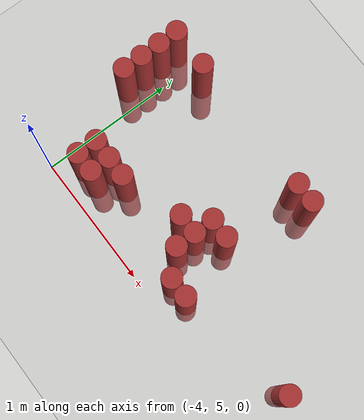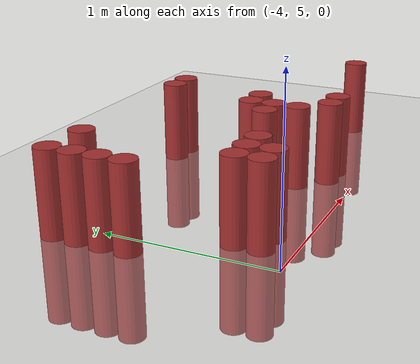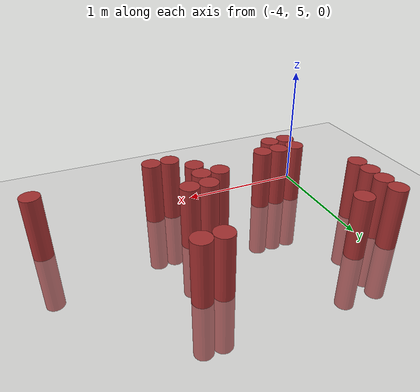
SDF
<sdf version="1.6">
 <world name="default">
  <model name="ground_plane">
   <static>1</static>
   <link name="link">
    <collision name="collision">
     <geometry><plane><normal>0 0 1</normal><size>100 100</size></plane></geometry>
     <surface><friction><ode><mu>100</mu><mu2>50</mu2></ode></friction></surface>
    </collision>
    <visual name="visual">
     <cast_shadows>0</cast_shadows>
     <geometry><plane><normal>0 0 1</normal><size>100 100</size></plane></geometry>
     <material>
      <script><uri>file://media/materials/scripts/gazebo.material</uri><name>Gazebo/Grey</name></script>
     </material>
    </visual>
   </link>
  </model>
  <model name="unit_cylinder_145">
   <static>1</static>
   <pose>-4.125000 5.775000 0.000000 0.000000 0.000000 0.000000</pose>
   <link name="link">
    <inertial>
     <mass>1</mass>
     <inertia><ixx>0.145833</ixx><ixy>0</ixy><ixz>0</ixz><iyy>0.145833</iyy><iyz>0</iyz><izz>0.125</izz></inertia>
    </inertial>
    <collision name="collision">
     <geometry><cylinder><radius>0.075000</radius><length>1</length></cylinder></geometry>
    </collision>
    <visual name="visual">
     <geometry><cylinder><radius>0.075000</radius><length>1</length></cylinder></geometry>
     <material>
      <ambient>0.648000 0.192000 0.192000 1</ambient>
      <diffuse>0.648000 0.192000 0.192000 1</diffuse>
     </material>
     <material>
      <script><name>Gazebo/Grey</name><uri>file://media/materials/scripts/gazebo.material</uri></script>
     </material>
    </visual>
    <sensor name="sensor_contact" type="contact"><contact><collision>collision</collision></contact></sensor>
   </link>
   <plugin filename="gz-sim-touchplugin-system" name="gz::sim::systems::TouchPlugin">
    <target>robot</target>
    <namespace>robot</namespace>
    <time>0.001</time>
    <enabled>true</enabled>
   </plugin>
  </model>
  <model name="unit_cylinder_146">
   <static>1</static>
   <pose>-4.125000 5.925000 0.000000 0.000000 0.000000 0.000000</pose>
   <link name="link">
    <inertial>
     <mass>1</mass>
     <inertia><ixx>0.145833</ixx><ixy>0</ixy><ixz>0</ixz><iyy>0.145833</iyy><iyz>0</iyz><izz>0.125</izz></inertia>
    </inertial>
    <collision name="collision">
     <geometry><cylinder><radius>0.075000</radius><length>1</length></cylinder></geometry>
    </collision>
    <visual name="visual">
     <geometry><cylinder><radius>0.075000</radius><length>1</length></cylinder></geometry>
     <material>
      <ambient>0.648000 0.192000 0.192000 1</ambient>
      <diffuse>0.648000 0.192000 0.192000 1</diffuse>
     </material>
     <material>
      <script><name>Gazebo/Grey</name><uri>file://media/materials/scripts/gazebo.material</uri></script>
     </material>
    </visual>
    <sensor name="sensor_contact" type="contact"><contact><collision>collision</collision></contact></sensor>
   </link>
   <plugin filename="gz-sim-touchplugin-system" name="gz::sim::systems::TouchPlugin">
    <target>robot</target>
    <namespace>robot</namespace>
    <time>0.001</time>
    <enabled>true</enabled>
   </plugin>
  </model>
  <model name="unit_cylinder_147">
   <static>1</static>
   <pose>-4.125000 6.075000 0.000000 0.000000 0.000000 0.000000</pose>
   <link name="link">
    <inertial>
     <mass>1</mass>
     <inertia><ixx>0.145833</ixx><ixy>0</ixy><ixz>0</ixz><iyy>0.145833</iyy><iyz>0</iyz><izz>0.125</izz></inertia>
    </inertial>
    <collision name="collision">
     <geometry><cylinder><radius>0.075000</radius><length>1</length></cylinder></geometry>
    </collision>
    <visual name="visual">
     <geometry><cylinder><radius>0.075000</radius><length>1</length></cylinder></geometry>
     <material>
      <ambient>0.648000 0.192000 0.192000 1</ambient>
      <diffuse>0.648000 0.192000 0.192000 1</diffuse>
     </material>
     <material>
      <script><name>Gazebo/Grey</name><uri>file://media/materials/scripts/gazebo.material</uri></script>
     </material>
    </visual>
    <sensor name="sensor_contact" type="contact"><contact><collision>collision</collision></contact></sensor>
   </link>
   <plugin filename="gz-sim-touchplugin-system" name="gz::sim::systems::TouchPlugin">
    <target>robot</target>
    <namespace>robot</namespace>
    <time>0.001</time>
    <enabled>true</enabled>
   </plugin>
  </model>
  <model name="unit_cylinder_148">
   <static>1</static>
   <pose>-4.125000 6.225000 0.000000 0.000000 0.000000 0.000000</pose>
   <link name="link">
    <inertial>
     <mass>1</mass>
     <inertia><ixx>0.145833</ixx><ixy>0</ixy><ixz>0</ixz><iyy>0.145833</iyy><iyz>0</iyz><izz>0.125</izz></inertia>
    </inertial>
    <collision name="collision">
     <geometry><cylinder><radius>0.075000</radius><length>1</length></cylinder></geometry>
    </collision>
    <visual name="visual">
     <geometry><cylinder><radius>0.075000</radius><length>1</length></cylinder></geometry>
     <material>
      <ambient>0.648000 0.192000 0.192000 1</ambient>
      <diffuse>0.648000 0.192000 0.192000 1</diffuse>
     </material>
     <material>
      <script><name>Gazebo/Grey</name><uri>file://media/materials/scripts/gazebo.material</uri></script>
     </material>
    </visual>
    <sensor name="sensor_contact" type="contact"><contact><collision>collision</collision></contact></sensor>
   </link>
   <plugin filename="gz-sim-touchplugin-system" name="gz::sim::systems::TouchPlugin">
    <target>robot</target>
    <namespace>robot</namespace>
    <time>0.001</time>
    <enabled>true</enabled>
   </plugin>
  </model>
  <model name="unit_cylinder_164">
   <static>1</static>
   <pose>-3.825000 5.175000 0.000000 0.000000 0.000000 0.000000</pose>
   <link name="link">
    <inertial>
     <mass>1</mass>
     <inertia><ixx>0.145833</ixx><ixy>0</ixy><ixz>0</ixz><iyy>0.145833</iyy><iyz>0</iyz><izz>0.125</izz></inertia>
    </inertial>
    <collision name="collision">
     <geometry><cylinder><radius>0.075000</radius><length>1</length></cylinder></geometry>
    </collision>
    <visual name="visual">
     <geometry><cylinder><radius>0.075000</radius><length>1</length></cylinder></geometry>
     <material>
      <ambient>0.648000 0.192000 0.192000 1</ambient>
      <diffuse>0.648000 0.192000 0.192000 1</diffuse>
     </material>
     <material>
      <script><name>Gazebo/Grey</name><uri>file://media/materials/scripts/gazebo.material</uri></script>
     </material>
    </visual>
    <sensor name="sensor_contact" type="contact"><contact><collision>collision</collision></contact></sensor>
   </link>
   <plugin filename="gz-sim-touchplugin-system" name="gz::sim::systems::TouchPlugin">
    <target>robot</target>
    <namespace>robot</namespace>
    <time>0.001</time>
    <enabled>true</enabled>
   </plugin>
  </model>
  <model name="unit_cylinder_165">
   <static>1</static>
   <pose>-3.825000 5.325000 0.000000 0.000000 0.000000 0.000000</pose>
   <link name="link">
    <inertial>
     <mass>1</mass>
     <inertia><ixx>0.145833</ixx><ixy>0</ixy><ixz>0</ixz><iyy>0.145833</iyy><iyz>0</iyz><izz>0.125</izz></inertia>
    </inertial>
    <collision name="collision">
     <geometry><cylinder><radius>0.075000</radius><length>1</length></cylinder></geometry>
    </collision>
    <visual name="visual">
     <geometry><cylinder><radius>0.075000</radius><length>1</length></cylinder></geometry>
     <material>
      <ambient>0.648000 0.192000 0.192000 1</ambient>
      <diffuse>0.648000 0.192000 0.192000 1</diffuse>
     </material>
     <material>
      <script><name>Gazebo/Grey</name><uri>file://media/materials/scripts/gazebo.material</uri></script>
     </material>
    </visual>
    <sensor name="sensor_contact" type="contact"><contact><collision>collision</collision></contact></sensor>
   </link>
   <plugin filename="gz-sim-touchplugin-system" name="gz::sim::systems::TouchPlugin">
    <target>robot</target>
    <namespace>robot</namespace>
    <time>0.001</time>
    <enabled>true</enabled>
   </plugin>
  </model>
  <model name="unit_cylinder_166">
   <static>1</static>
   <pose>-3.825000 6.225000 0.000000 0.000000 0.000000 0.000000</pose>
   <link name="link">
    <inertial>
     <mass>1</mass>
     <inertia><ixx>0.145833</ixx><ixy>0</ixy><ixz>0</ixz><iyy>0.145833</iyy><iyz>0</iyz><izz>0.125</izz></inertia>
    </inertial>
    <collision name="collision">
     <geometry><cylinder><radius>0.075000</radius><length>1</length></cylinder></geometry>
    </collision>
    <visual name="visual">
     <geometry><cylinder><radius>0.075000</radius><length>1</length></cylinder></geometry>
     <material>
      <ambient>0.648000 0.192000 0.192000 1</ambient>
      <diffuse>0.648000 0.192000 0.192000 1</diffuse>
     </material>
     <material>
      <script><name>Gazebo/Grey</name><uri>file://media/materials/scripts/gazebo.material</uri></script>
     </material>
    </visual>
    <sensor name="sensor_contact" type="contact"><contact><collision>collision</collision></contact></sensor>
   </link>
   <plugin filename="gz-sim-touchplugin-system" name="gz::sim::systems::TouchPlugin">
    <target>robot</target>
    <namespace>robot</namespace>
    <time>0.001</time>
    <enabled>true</enabled>
   </plugin>
  </model>
  <model name="unit_cylinder_171">
   <static>1</static>
   <pose>-3.675000 5.175000 0.000000 0.000000 0.000000 0.000000</pose>
   <link name="link">
    <inertial>
     <mass>1</mass>
     <inertia><ixx>0.145833</ixx><ixy>0</ixy><ixz>0</ixz><iyy>0.145833</iyy><iyz>0</iyz><izz>0.125</izz></inertia>
    </inertial>
    <collision name="collision">
     <geometry><cylinder><radius>0.075000</radius><length>1</length></cylinder></geometry>
    </collision>
    <visual name="visual">
     <geometry><cylinder><radius>0.075000</radius><length>1</length></cylinder></geometry>
     <material>
      <ambient>0.648000 0.192000 0.192000 1</ambient>
      <diffuse>0.648000 0.192000 0.192000 1</diffuse>
     </material>
     <material>
      <script><name>Gazebo/Grey</name><uri>file://media/materials/scripts/gazebo.material</uri></script>
     </material>
    </visual>
    <sensor name="sensor_contact" type="contact"><contact><collision>collision</collision></contact></sensor>
   </link>
   <plugin filename="gz-sim-touchplugin-system" name="gz::sim::systems::TouchPlugin">
    <target>robot</target>
    <namespace>robot</namespace>
    <time>0.001</time>
    <enabled>true</enabled>
   </plugin>
  </model>
  <model name="unit_cylinder_172">
   <static>1</static>
   <pose>-3.675000 5.325000 0.000000 0.000000 0.000000 0.000000</pose>
   <link name="link">
    <inertial>
     <mass>1</mass>
     <inertia><ixx>0.145833</ixx><ixy>0</ixy><ixz>0</ixz><iyy>0.145833</iyy><iyz>0</iyz><izz>0.125</izz></inertia>
    </inertial>
    <collision name="collision">
     <geometry><cylinder><radius>0.075000</radius><length>1</length></cylinder></geometry>
    </collision>
    <visual name="visual">
     <geometry><cylinder><radius>0.075000</radius><length>1</length></cylinder></geometry>
     <material>
      <ambient>0.648000 0.192000 0.192000 1</ambient>
      <diffuse>0.648000 0.192000 0.192000 1</diffuse>
     </material>
     <material>
      <script><name>Gazebo/Grey</name><uri>file://media/materials/scripts/gazebo.material</uri></script>
     </material>
    </visual>
    <sensor name="sensor_contact" type="contact"><contact><collision>collision</collision></contact></sensor>
   </link>
   <plugin filename="gz-sim-touchplugin-system" name="gz::sim::systems::TouchPlugin">
    <target>robot</target>
    <namespace>robot</namespace>
    <time>0.001</time>
    <enabled>true</enabled>
   </plugin>
  </model>
  <model name="unit_cylinder_177">
   <static>1</static>
   <pose>-3.525000 5.325000 0.000000 0.000000 0.000000 0.000000</pose>
   <link name="link">
    <inertial>
     <mass>1</mass>
     <inertia><ixx>0.145833</ixx><ixy>0</ixy><ixz>0</ixz><iyy>0.145833</iyy><iyz>0</iyz><izz>0.125</izz></inertia>
    </inertial>
    <collision name="collision">
     <geometry><cylinder><radius>0.075000</radius><length>1</length></cylinder></geometry>
    </collision>
    <visual name="visual">
     <geometry><cylinder><radius>0.075000</radius><length>1</length></cylinder></geometry>
     <material>
      <ambient>0.648000 0.192000 0.192000 1</ambient>
      <diffuse>0.648000 0.192000 0.192000 1</diffuse>
     </material>
     <material>
      <script><name>Gazebo/Grey</name><uri>file://media/materials/scripts/gazebo.material</uri></script>
     </material>
    </visual>
    <sensor name="sensor_contact" type="contact"><contact><collision>collision</collision></contact></sensor>
   </link>
   <plugin filename="gz-sim-touchplugin-system" name="gz::sim::systems::TouchPlugin">
    <target>robot</target>
    <namespace>robot</namespace>
    <time>0.001</time>
    <enabled>true</enabled>
   </plugin>
  </model>
  <model name="unit_cylinder_195">
   <static>1</static>
   <pose>-3.075000 5.475000 0.000000 0.000000 0.000000 0.000000</pose>
   <link name="link">
    <inertial>
     <mass>1</mass>
     <inertia><ixx>0.145833</ixx><ixy>0</ixy><ixz>0</ixz><iyy>0.145833</iyy><iyz>0</iyz><izz>0.125</izz></inertia>
    </inertial>
    <collision name="collision">
     <geometry><cylinder><radius>0.075000</radius><length>1</length></cylinder></geometry>
    </collision>
    <visual name="visual">
     <geometry><cylinder><radius>0.075000</radius><length>1</length></cylinder></geometry>
     <material>
      <ambient>0.648000 0.192000 0.192000 1</ambient>
      <diffuse>0.648000 0.192000 0.192000 1</diffuse>
     </material>
     <material>
      <script><name>Gazebo/Grey</name><uri>file://media/materials/scripts/gazebo.material</uri></script>
     </material>
    </visual>
    <sensor name="sensor_contact" type="contact"><contact><collision>collision</collision></contact></sensor>
   </link>
   <plugin filename="gz-sim-touchplugin-system" name="gz::sim::systems::TouchPlugin">
    <target>robot</target>
    <namespace>robot</namespace>
    <time>0.001</time>
    <enabled>true</enabled>
   </plugin>
  </model>
  <model name="unit_cylinder_205">
   <static>1</static>
   <pose>-2.925000 5.325000 0.000000 0.000000 0.000000 0.000000</pose>
   <link name="link">
    <inertial>
     <mass>1</mass>
     <inertia><ixx>0.145833</ixx><ixy>0</ixy><ixz>0</ixz><iyy>0.145833</iyy><iyz>0</iyz><izz>0.125</izz></inertia>
    </inertial>
    <collision name="collision">
     <geometry><cylinder><radius>0.075000</radius><length>1</length></cylinder></geometry>
    </collision>
    <visual name="visual">
     <geometry><cylinder><radius>0.075000</radius><length>1</length></cylinder></geometry>
     <material>
      <ambient>0.648000 0.192000 0.192000 1</ambient>
      <diffuse>0.648000 0.192000 0.192000 1</diffuse>
     </material>
     <material>
      <script><name>Gazebo/Grey</name><uri>file://media/materials/scripts/gazebo.material</uri></script>
     </material>
    </visual>
    <sensor name="sensor_contact" type="contact"><contact><collision>collision</collision></contact></sensor>
   </link>
   <plugin filename="gz-sim-touchplugin-system" name="gz::sim::systems::TouchPlugin">
    <target>robot</target>
    <namespace>robot</namespace>
    <time>0.001</time>
    <enabled>true</enabled>
   </plugin>
  </model>
  <model name="unit_cylinder_206">
   <static>1</static>
   <pose>-2.925000 5.475000 0.000000 0.000000 0.000000 0.000000</pose>
   <link name="link">
    <inertial>
     <mass>1</mass>
     <inertia><ixx>0.145833</ixx><ixy>0</ixy><ixz>0</ixz><iyy>0.145833</iyy><iyz>0</iyz><izz>0.125</izz></inertia>
    </inertial>
    <collision name="collision">
     <geometry><cylinder><radius>0.075000</radius><length>1</length></cylinder></geometry>
    </collision>
    <visual name="visual">
     <geometry><cylinder><radius>0.075000</radius><length>1</length></cylinder></geometry>
     <material>
      <ambient>0.648000 0.192000 0.192000 1</ambient>
      <diffuse>0.648000 0.192000 0.192000 1</diffuse>
     </material>
     <material>
      <script><name>Gazebo/Grey</name><uri>file://media/materials/scripts/gazebo.material</uri></script>
     </material>
    </visual>
    <sensor name="sensor_contact" type="contact"><contact><collision>collision</collision></contact></sensor>
   </link>
   <plugin filename="gz-sim-touchplugin-system" name="gz::sim::systems::TouchPlugin">
    <target>robot</target>
    <namespace>robot</namespace>
    <time>0.001</time>
    <enabled>true</enabled>
   </plugin>
  </model>
  <model name="unit_cylinder_207">
   <static>1</static>
   <pose>-2.925000 5.625000 0.000000 0.000000 0.000000 0.000000</pose>
   <link name="link">
    <inertial>
     <mass>1</mass>
     <inertia><ixx>0.145833</ixx><ixy>0</ixy><ixz>0</ixz><iyy>0.145833</iyy><iyz>0</iyz><izz>0.125</izz></inertia>
    </inertial>
    <collision name="collision">
     <geometry><cylinder><radius>0.075000</radius><length>1</length></cylinder></geometry>
    </collision>
    <visual name="visual">
     <geometry><cylinder><radius>0.075000</radius><length>1</length></cylinder></geometry>
     <material>
      <ambient>0.648000 0.192000 0.192000 1</ambient>
      <diffuse>0.648000 0.192000 0.192000 1</diffuse>
     </material>
     <material>
      <script><name>Gazebo/Grey</name><uri>file://media/materials/scripts/gazebo.material</uri></script>
     </material>
    </visual>
    <sensor name="sensor_contact" type="contact"><contact><collision>collision</collision></contact></sensor>
   </link>
   <plugin filename="gz-sim-touchplugin-system" name="gz::sim::systems::TouchPlugin">
    <target>robot</target>
    <namespace>robot</namespace>
    <time>0.001</time>
    <enabled>true</enabled>
   </plugin>
  </model>
  <model name="unit_cylinder_211">
   <static>1</static>
   <pose>-2.775000 5.175000 0.000000 0.000000 0.000000 0.000000</pose>
   <link name="link">
    <inertial>
     <mass>1</mass>
     <inertia><ixx>0.145833</ixx><ixy>0</ixy><ixz>0</ixz><iyy>0.145833</iyy><iyz>0</iyz><izz>0.125</izz></inertia>
    </inertial>
    <collision name="collision">
     <geometry><cylinder><radius>0.075000</radius><length>1</length></cylinder></geometry>
    </collision>
    <visual name="visual">
     <geometry><cylinder><radius>0.075000</radius><length>1</length></cylinder></geometry>
     <material>
      <ambient>0.648000 0.192000 0.192000 1</ambient>
      <diffuse>0.648000 0.192000 0.192000 1</diffuse>
     </material>
     <material>
      <script><name>Gazebo/Grey</name><uri>file://media/materials/scripts/gazebo.material</uri></script>
     </material>
    </visual>
    <sensor name="sensor_contact" type="contact"><contact><collision>collision</collision></contact></sensor>
   </link>
   <plugin filename="gz-sim-touchplugin-system" name="gz::sim::systems::TouchPlugin">
    <target>robot</target>
    <namespace>robot</namespace>
    <time>0.001</time>
    <enabled>true</enabled>
   </plugin>
  </model>
  <model name="unit_cylinder_212">
   <static>1</static>
   <pose>-2.775000 5.625000 0.000000 0.000000 0.000000 0.000000</pose>
   <link name="link">
    <inertial>
     <mass>1</mass>
     <inertia><ixx>0.145833</ixx><ixy>0</ixy><ixz>0</ixz><iyy>0.145833</iyy><iyz>0</iyz><izz>0.125</izz></inertia>
    </inertial>
    <collision name="collision">
     <geometry><cylinder><radius>0.075000</radius><length>1</length></cylinder></geometry>
    </collision>
    <visual name="visual">
     <geometry><cylinder><radius>0.075000</radius><length>1</length></cylinder></geometry>
     <material>
      <ambient>0.648000 0.192000 0.192000 1</ambient>
      <diffuse>0.648000 0.192000 0.192000 1</diffuse>
     </material>
     <material>
      <script><name>Gazebo/Grey</name><uri>file://media/materials/scripts/gazebo.material</uri></script>
     </material>
    </visual>
    <sensor name="sensor_contact" type="contact"><contact><collision>collision</collision></contact></sensor>
   </link>
   <plugin filename="gz-sim-touchplugin-system" name="gz::sim::systems::TouchPlugin">
    <target>robot</target>
    <namespace>robot</namespace>
    <time>0.001</time>
    <enabled>true</enabled>
   </plugin>
  </model>
  <model name="unit_cylinder_213">
   <static>1</static>
   <pose>-2.775000 6.225000 0.000000 0.000000 0.000000 0.000000</pose>
   <link name="link">
    <inertial>
     <mass>1</mass>
     <inertia><ixx>0.145833</ixx><ixy>0</ixy><ixz>0</ixz><iyy>0.145833</iyy><iyz>0</iyz><izz>0.125</izz></inertia>
    </inertial>
    <collision name="collision">
     <geometry><cylinder><radius>0.075000</radius><length>1</length></cylinder></geometry>
    </collision>
    <visual name="visual">
     <geometry><cylinder><radius>0.075000</radius><length>1</length></cylinder></geometry>
     <material>
      <ambient>0.648000 0.192000 0.192000 1</ambient>
      <diffuse>0.648000 0.192000 0.192000 1</diffuse>
     </material>
     <material>
      <script><name>Gazebo/Grey</name><uri>file://media/materials/scripts/gazebo.material</uri></script>
     </material>
    </visual>
    <sensor name="sensor_contact" type="contact"><contact><collision>collision</collision></contact></sensor>
   </link>
   <plugin filename="gz-sim-touchplugin-system" name="gz::sim::systems::TouchPlugin">
    <target>robot</target>
    <namespace>robot</namespace>
    <time>0.001</time>
    <enabled>true</enabled>
   </plugin>
  </model>
  <model name="unit_cylinder_216">
   <static>1</static>
   <pose>-2.625000 5.175000 0.000000 0.000000 0.000000 0.000000</pose>
   <link name="link">
    <inertial>
     <mass>1</mass>
     <inertia><ixx>0.145833</ixx><ixy>0</ixy><ixz>0</ixz><iyy>0.145833</iyy><iyz>0</iyz><izz>0.125</izz></inertia>
    </inertial>
    <collision name="collision">
     <geometry><cylinder><radius>0.075000</radius><length>1</length></cylinder></geometry>
    </collision>
    <visual name="visual">
     <geometry><cylinder><radius>0.075000</radius><length>1</length></cylinder></geometry>
     <material>
      <ambient>0.648000 0.192000 0.192000 1</ambient>
      <diffuse>0.648000 0.192000 0.192000 1</diffuse>
     </material>
     <material>
      <script><name>Gazebo/Grey</name><uri>file://media/materials/scripts/gazebo.material</uri></script>
     </material>
    </visual>
    <sensor name="sensor_contact" type="contact"><contact><collision>collision</collision></contact></sensor>
   </link>
   <plugin filename="gz-sim-touchplugin-system" name="gz::sim::systems::TouchPlugin">
    <target>robot</target>
    <namespace>robot</namespace>
    <time>0.001</time>
    <enabled>true</enabled>
   </plugin>
  </model>
  <model name="unit_cylinder_217">
   <static>1</static>
   <pose>-2.625000 6.225000 0.000000 0.000000 0.000000 0.000000</pose>
   <link name="link">
    <inertial>
     <mass>1</mass>
     <inertia><ixx>0.145833</ixx><ixy>0</ixy><ixz>0</ixz><iyy>0.145833</iyy><iyz>0</iyz><izz>0.125</izz></inertia>
    </inertial>
    <collision name="collision">
     <geometry><cylinder><radius>0.075000</radius><length>1</length></cylinder></geometry>
    </collision>
    <visual name="visual">
     <geometry><cylinder><radius>0.075000</radius><length>1</length></cylinder></geometry>
     <material>
      <ambient>0.648000 0.192000 0.192000 1</ambient>
      <diffuse>0.648000 0.192000 0.192000 1</diffuse>
     </material>
     <material>
      <script><name>Gazebo/Grey</name><uri>file://media/materials/scripts/gazebo.material</uri></script>
     </material>
    </visual>
    <sensor name="sensor_contact" type="contact"><contact><collision>collision</collision></contact></sensor>
   </link>
   <plugin filename="gz-sim-touchplugin-system" name="gz::sim::systems::TouchPlugin">
    <target>robot</target>
    <namespace>robot</namespace>
    <time>0.001</time>
    <enabled>true</enabled>
   </plugin>
  </model>
  <model name="unit_cylinder_230">
   <static>1</static>
   <pose>-1.725000 5.325000 0.000000 0.000000 0.000000 0.000000</pose>
   <link name="link">
    <inertial>
     <mass>1</mass>
     <inertia><ixx>0.145833</ixx><ixy>0</ixy><ixz>0</ixz><iyy>0.145833</iyy><iyz>0</iyz><izz>0.125</izz></inertia>
    </inertial>
    <collision name="collision">
     <geometry><cylinder><radius>0.075000</radius><length>1</length></cylinder></geometry>
    </collision>
    <visual name="visual">
     <geometry><cylinder><radius>0.075000</radius><length>1</length></cylinder></geometry>
     <material>
      <ambient>0.648000 0.192000 0.192000 1</ambient>
      <diffuse>0.648000 0.192000 0.192000 1</diffuse>
     </material>
     <material>
      <script><name>Gazebo/Grey</name><uri>file://media/materials/scripts/gazebo.material</uri></script>
     </material>
    </visual>
    <sensor name="sensor_contact" type="contact"><contact><collision>collision</collision></contact></sensor>
   </link>
   <plugin filename="gz-sim-touchplugin-system" name="gz::sim::systems::TouchPlugin">
    <target>robot</target>
    <namespace>robot</namespace>
    <time>0.001</time>
    <enabled>true</enabled>
   </plugin>
  </model>
 </world>
</sdf>
